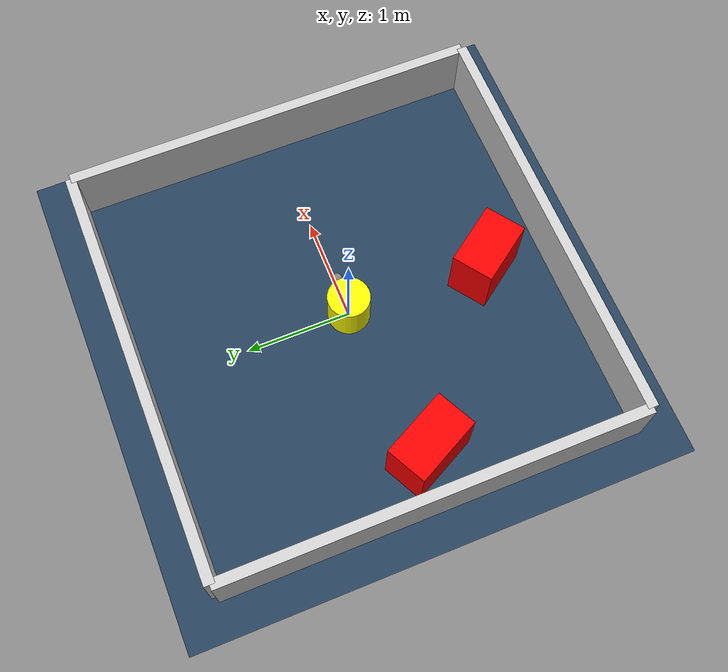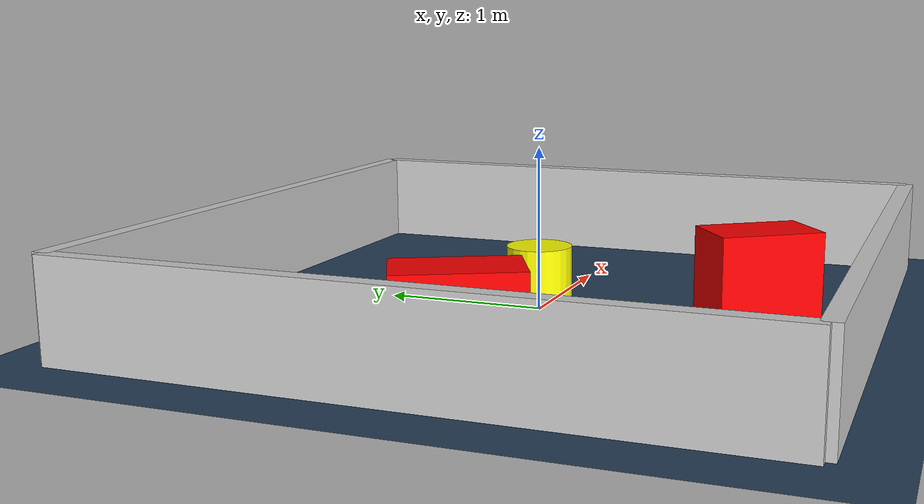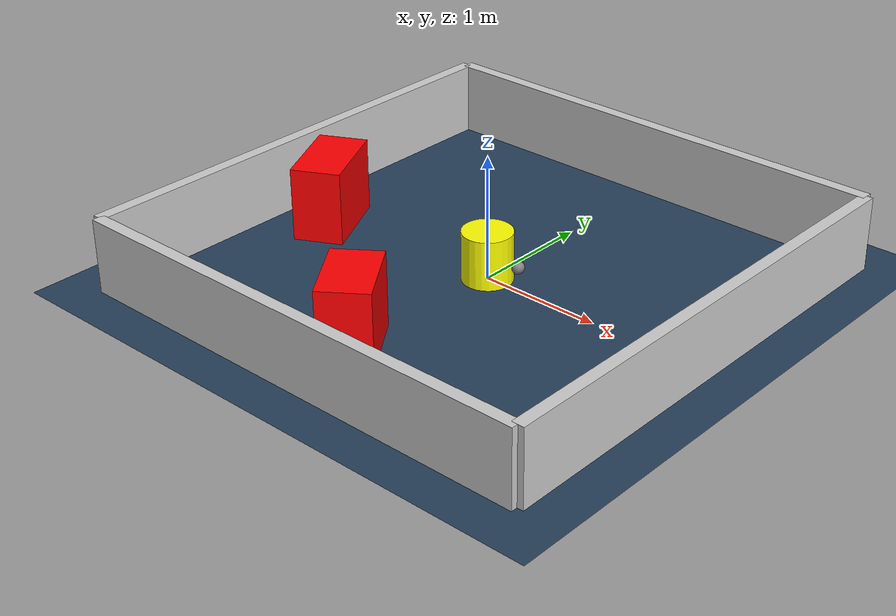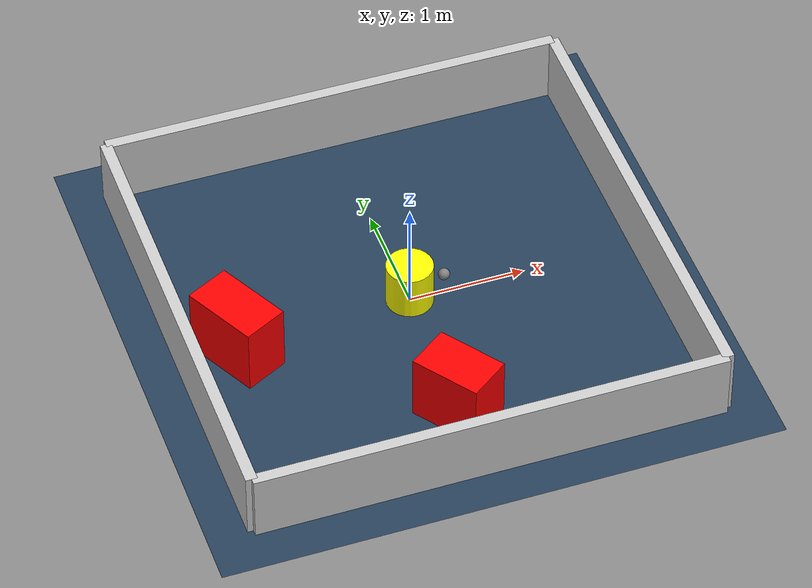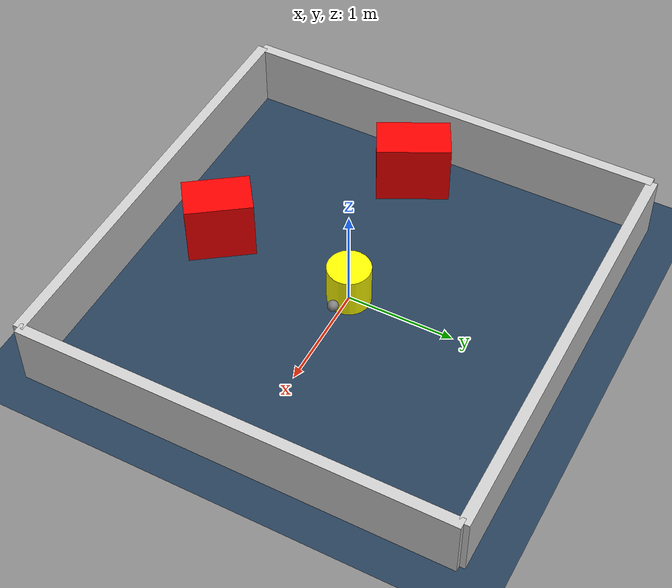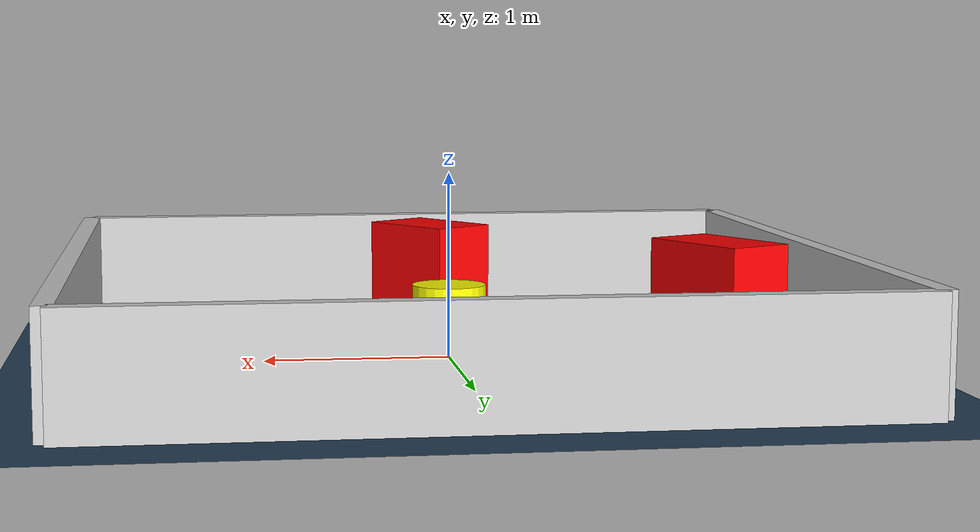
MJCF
<?xml version="1.0" ?>
<mujoco model="generated_environment">
  <option timestep="0.01" integrator="RK4" cone="elliptic"/>
  <default>
    <geom density="1"/>
  </default>
  <asset>
    <texture builtin="gradient" height="3072" rgb1="0.3 0.5 0.7" rgb2="0 0 0" type="skybox" width="512"/>
    <texture builtin="checker" height="300" mark="edge" markrgb="0.8 0.8 0.8" name="groundplane" rgb1="0.2 0.3 0.4" rgb2="0.1 0.2 0.3" type="2d" width="300"/>
    <material name="groundplane" reflectance="0.2" texrepeat="5 5" texture="groundplane" texuniform="true"/>
    <material name="robot" rgba="0.0 1.0 0.0 1"/>
  </asset>
  <worldbody>
    <light dir="0 0 -1" directional="true" pos="0 0 1.5"/>
    <geom condim="4" friction="1.0 0.005 0.001" material="groundplane" name="floor" size="0 0 0.05" type="plane"/>
    <body name="walls">
      <geom name="wall_1" condim="4" pos="-2.0 0.0 0.3" rgba="0.800000011920929 0.800000011920929 0.800000011920929 1.0" size="0.05 2.0 0.3" type="box"/>
      <geom name="wall_2" condim="4" pos="2.0 0.0 0.3" rgba="0.800000011920929 0.800000011920929 0.800000011920929 1.0" size="0.05 2.0 0.3" type="box"/>
      <geom name="wall_3" condim="4" pos="0.0 -2.0 0.3" rgba="0.800000011920929 0.800000011920929 0.800000011920929 1.0" size="2.0 0.05 0.3" type="box"/>
      <geom name="wall_4" condim="4" pos="0.0 2.0 0.3" rgba="0.800000011920929 0.800000011920929 0.800000011920929 1.0" size="2.0 0.05 0.3" type="box"/>
    </body>
    <body name="robot">
      <joint name="joint_x" type="slide" pos="0 0 0" axis="1 0 0"/>
      <joint name="joint_y" type="slide" pos="0 0 0" axis="0 1 0"/>
      <geom name="robot" type="sphere" pos="0.3 0.0 0.2" size="0.05" mass="5." friction="1.0 0.005 0.0001" condim="4" rgba="0.5 0.5 0.5 1.0"/>
      <site name="sensor_ball"/>
    </body>
    <body name="obstacle_movable_1">
      <geom name="obstacle_movable_1" condim="4" pos="0.0 0.0 0.2" euler="0 0 0.0" friction="1.0 0.005 0.001" rgba="1.0 1.0 0.0 1.0" size="0.2 0.2 0.0" type="cylinder" mass="0.1"/>
      <joint type="free"/>
    </body>
    <body name="obstacle_2_static">
      <geom name="obstacle_2_static" condim="4" pos="-0.057857011686771376 -1.3509356106149129 0.3" euler="0 0 305.6262385536594" friction="1.0 0.005 0.001" rgba="1 0 0 1" size="0.30730773759532476 0.2 0.3" type="box"/>
    </body>
    <body name="obstacle_3_static">
      <geom name="obstacle_3_static" condim="4" pos="-1.5337121513411174 -0.13710525850269417 0.3" euler="0 0 297.05965061615296" friction="1.0 0.005 0.001" rgba="1 0 0 1" size="0.34026155057520024 0.2 0.3" type="box"/>
    </body>
  </worldbody>
  <actuator>
    <motor name="actuator_x" joint="joint_x" gear="1" ctrlrange="-1 1"/>
    <motor name="actuator_y" joint="joint_y" gear="1" ctrlrange="-1 1"/>
  </actuator>
</mujoco>
